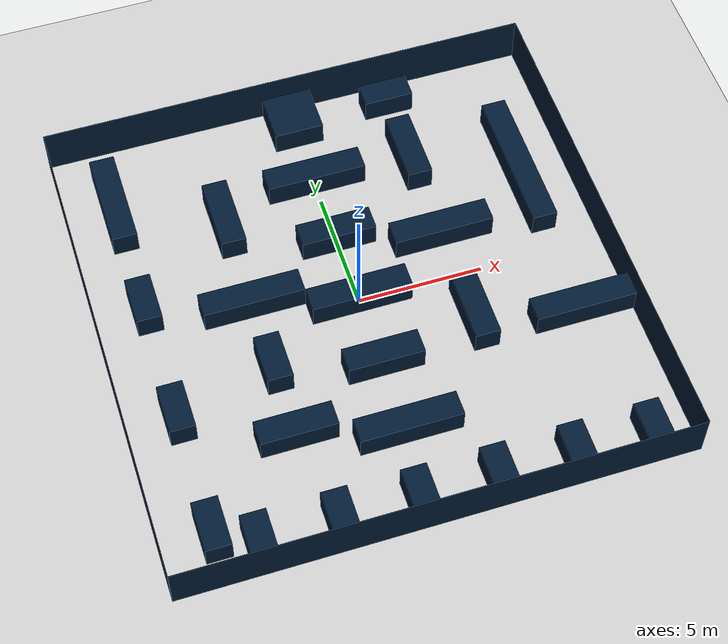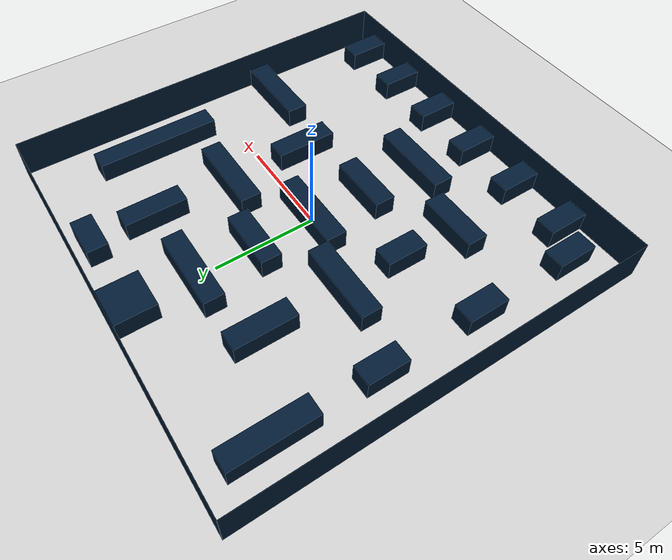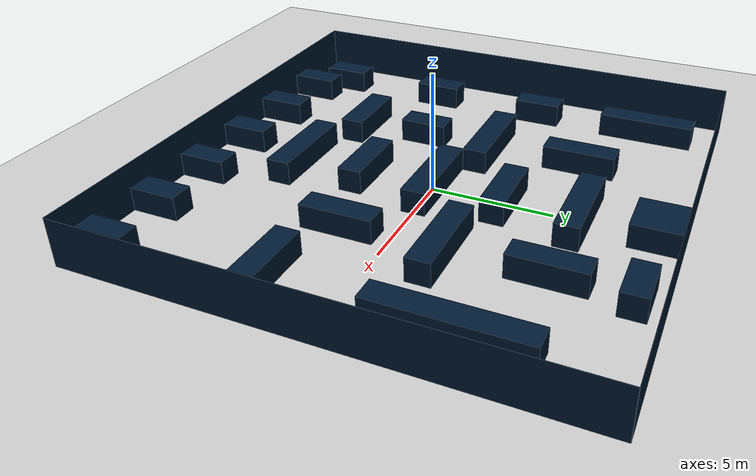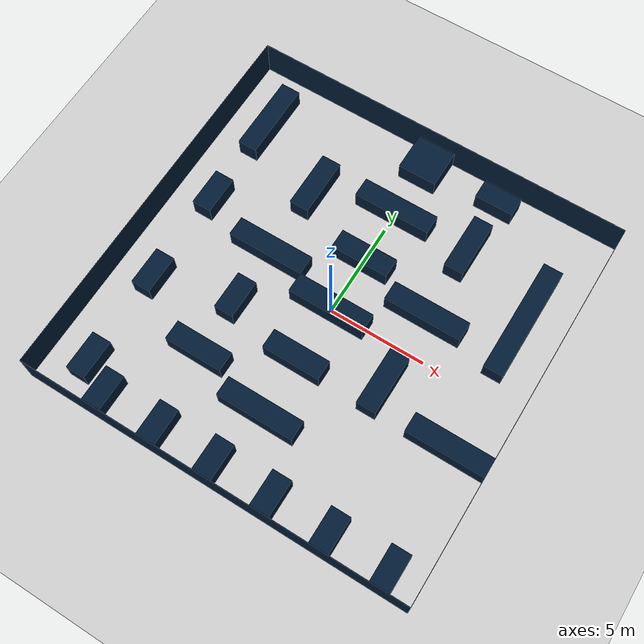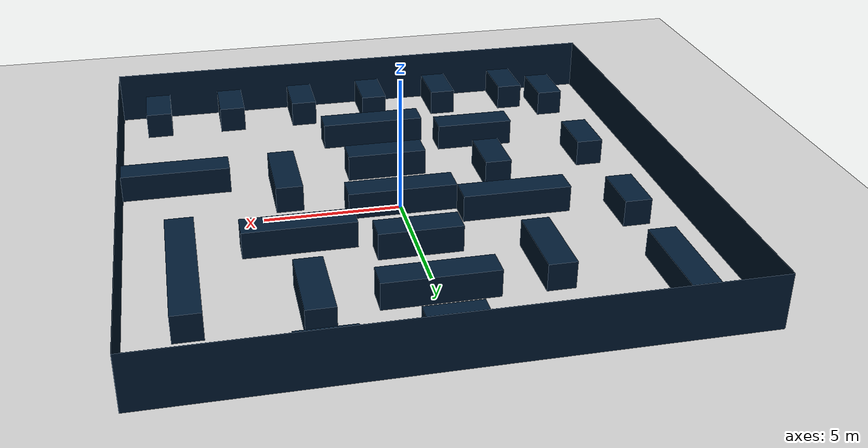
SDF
<?xml version="1.0" ?>
<sdf version="1.6">
  <world name="maze">

    <!-- Physics configuration -->
    <physics name="default_physics" type="ode">
      <max_step_size>0.003</max_step_size>
      <real_time_factor>1</real_time_factor>
      <real_time_update_rate>1000</real_time_update_rate>
    </physics>

    <!-- Global environment -->
    <gravity>0 0 -9.8</gravity>
    <scene>
      <ambient>0.4 0.4 0.4 1</ambient>
      <background>0.7 0.7 0.7 1</background>
      <shadows>1</shadows>
    </scene>

    <!-- Directional light -->
    <light name="sun" type="directional">
      <cast_shadows>true</cast_shadows>
      <pose>0 0 10 0 -0 0</pose>
      <diffuse>0.8 0.8 0.8 1</diffuse>
      <specular>0.2 0.2 0.2 1</specular>
      <attenuation>
        <range>1000</range>
        <constant>0.9</constant>
        <linear>0.01</linear>
        <quadratic>0.001</quadratic>
      </attenuation>
      <direction>-0.5 0.1 -0.9</direction>
    </light>

    <!-- Ground plane -->
    <model name="ground_plane">
      <static>true</static>
      <pose>0 0 0 0 0 0</pose>
      <link name="link">
        <collision name="collision">
          <geometry>
            <plane>
              <normal>0 0 1</normal>
              <size>100 100</size>
            </plane>
          </geometry>
          <surface>
            <friction><ode/></friction>
          </surface>
        </collision>
        <visual name="visual">
          <geometry>
            <plane>
              <normal>0 0 1</normal>
              <size>100 100</size>
            </plane>
          </geometry>
          <material>
            <ambient>0.8 0.8 0.8 1</ambient>
            <diffuse>0.8 0.8 0.8 1</diffuse>
            <specular>0.8 0.8 0.8 1</specular>
          </material>
        </visual>
      </link>
    </model>

    <!-- Outer border walls -->
    <model name="border">
      <static>true</static>
      <pose>0 0 1 0 0 0</pose>

      <!-- Left wall -->
      <link name="wall1">
        <pose>-10.005 0 0 0 0 0</pose>
        <collision name="collision"><geometry><box><size>0.01 20 2</size></box></geometry></collision>
        <visual name="visual"><geometry><box><size>0.01 20 2</size></box></geometry>
          <material><diffuse>0 0.1 0.2 1</diffuse></material></visual>
      </link>

      <!-- Right wall -->
      <link name="wall2">
        <pose>10.005 0 0 0 0 0</pose>
        <collision name="collision"><geometry><box><size>0.01 20 2</size></box></geometry></collision>
        <visual name="visual"><geometry><box><size>0.01 20 2</size></box></geometry>
          <material><diffuse>0 0.1 0.2 1</diffuse></material></visual>
      </link>

      <!-- Top wall -->
      <link name="wall3">
        <pose>0 10.005 0 0 0 0</pose>
        <collision name="collision"><geometry><box><size>20 0.01 2</size></box></geometry></collision>
        <visual name="visual"><geometry><box><size>20 0.01 2</size></box></geometry>
          <material><diffuse>0 0.1 0.2 1</diffuse></material></visual>
      </link>

      <!-- Bottom wall -->
      <link name="wall4">
        <pose>0 -10.005 0 0 0 0</pose>
        <collision name="collision"><geometry><box><size>20 0.01 2</size></box></geometry></collision>
        <visual name="visual"><geometry><box><size>20 0.01 2</size></box></geometry>
          <material><diffuse>0 0.1 0.2 1</diffuse></material></visual>
      </link>
    </model>

    <!-- Maze obstacles -->
    <model name="obstacles">
      <static>true</static>
      <pose>0 0 0.5 0 0 0</pose>

      <!-- Walls 1–26 -->
      <link name="wall1"><pose>-6.5 -9 0 0 0 0</pose><collision name="collision"><geometry><box><size>1 2 1</size></box></geometry></collision><visual name="visual"><geometry><box><size>1 2 1</size></box></geometry><material><diffuse>0 0.1 0.2 1</diffuse></material></visual></link>
      <link name="wall2"><pose>-3.5 -9 0 0 0 0</pose><collision name="collision"><geometry><box><size>1 2 1</size></box></geometry></collision><visual name="visual"><geometry><box><size>1 2 1</size></box></geometry><material><diffuse>0 0.1 0.2 1</diffuse></material></visual></link>
      <link name="wall3"><pose>-0.5 -9 0 0 0 0</pose><collision name="collision"><geometry><box><size>1 2 1</size></box></geometry></collision><visual name="visual"><geometry><box><size>1 2 1</size></box></geometry><material><diffuse>0 0.1 0.2 1</diffuse></material></visual></link>
      <link name="wall4"><pose>2.5 -9 0 0 0 0</pose><collision name="collision"><geometry><box><size>1 2 1</size></box></geometry></collision><visual name="visual"><geometry><box><size>1 2 1</size></box></geometry><material><diffuse>0 0.1 0.2 1</diffuse></material></visual></link>
      <link name="wall5"><pose>5.5 -9 0 0 0 0</pose><collision name="collision"><geometry><box><size>1 2 1</size></box></geometry></collision><visual name="visual"><geometry><box><size>1 2 1</size></box></geometry><material><diffuse>0 0.1 0.2 1</diffuse></material></visual></link>
      <link name="wall6"><pose>8.5 -9 0 0 0 0</pose><collision name="collision"><geometry><box><size>1 2 1</size></box></geometry></collision><visual name="visual"><geometry><box><size>1 2 1</size></box></geometry><material><diffuse>0 0.1 0.2 1</diffuse></material></visual></link>
      <link name="wall7"><pose>-8 7 0 0 0 0</pose><collision name="collision"><geometry><box><size>1 4 1</size></box></geometry></collision><visual name="visual"><geometry><box><size>1 4 1</size></box></geometry><material><diffuse>0 0.1 0.2 1</diffuse></material></visual></link>
      <link name="wall8"><pose>-8 2 0 0 0 0</pose><collision name="collision"><geometry><box><size>1 2 1</size></box></geometry></collision><visual name="visual"><geometry><box><size>1 2 1</size></box></geometry><material><diffuse>0 0.1 0.2 1</diffuse></material></visual></link>
      <link name="wall9"><pose>-8 -3 0 0 0 0</pose><collision name="collision"><geometry><box><size>1 2 1</size></box></geometry></collision><visual name="visual"><geometry><box><size>1 2 1</size></box></geometry><material><diffuse>0 0.1 0.2 1</diffuse></material></visual></link>
      <link name="wall10"><pose>-8 -8 0 0 0 0</pose><collision name="collision"><geometry><box><size>1 2 1</size></box></geometry></collision><visual name="visual"><geometry><box><size>1 2 1</size></box></geometry><material><diffuse>0 0.1 0.2 1</diffuse></material></visual></link>
      <link name="wall11"><pose>-4 -5 0 0 0 1.57</pose><collision name="collision"><geometry><box><size>1 3 1</size></box></geometry></collision><visual name="visual"><geometry><box><size>1 3 1</size></box></geometry><material><diffuse>0 0.1 0.2 1</diffuse></material></visual></link>
      <link name="wall12"><pose>-4 -2 0 0 0 0</pose><collision name="collision"><geometry><box><size>1 2 1</size></box></geometry></collision><visual name="visual"><geometry><box><size>1 2 1</size></box></geometry><material><diffuse>0 0.1 0.2 1</diffuse></material></visual></link>
      <link name="wall13"><pose>-4 1 0 0 0 1.57</pose><collision name="collision"><geometry><box><size>1 4 1</size></box></geometry></collision><visual name="visual"><geometry><box><size>1 4 1</size></box></geometry><material><diffuse>0 0.1 0.2 1</diffuse></material></visual></link>
      <link name="wall14"><pose>-4 5 0 0 0 0</pose><collision name="collision"><geometry><box><size>1 3 1</size></box></geometry></collision><visual name="visual"><geometry><box><size>1 3 1</size></box></geometry><material><diffuse>0 0.1 0.2 1</diffuse></material></visual></link>
      <link name="wall15"><pose>0 9 0 0 0 0</pose><collision name="collision"><geometry><box><size>2 2 1</size></box></geometry></collision><visual name="visual"><geometry><box><size>2 2 1</size></box></geometry><material><diffuse>0 0.1 0.2 1</diffuse></material></visual></link>
      <link name="wall16"><pose>0 6 0 0 0 0</pose><collision name="collision"><geometry><box><size>4 1 1</size></box></geometry></collision><visual name="visual"><geometry><box><size>4 1 1</size></box></geometry><material><diffuse>0 0.1 0.2 1</diffuse></material></visual></link>
      <link name="wall17"><pose>0 3 0 0 0 1.57</pose><collision name="collision"><geometry><box><size>1 3 1</size></box></geometry></collision><visual name="visual"><geometry><box><size>1 3 1</size></box></geometry><material><diffuse>0 0.1 0.2 1</diffuse></material></visual></link>
      <link name="wall18"><pose>0 0 0 0 0 0</pose><collision name="collision"><geometry><box><size>4 1 1</size></box></geometry></collision><visual name="visual"><geometry><box><size>4 1 1</size></box></geometry><material><diffuse>0 0.1 0.2 1</diffuse></material></visual></link>
      <link name="wall19"><pose>0 -3 0 0 0 1.57</pose><collision name="collision"><geometry><box><size>1 3 1</size></box></geometry></collision><visual name="visual"><geometry><box><size>1 3 1</size></box></geometry><material><diffuse>0 0.1 0.2 1</diffuse></material></visual></link>
      <link name="wall20"><pose>0 -6 0 0 0 0</pose><collision name="collision"><geometry><box><size>4 1 1</size></box></geometry></collision><visual name="visual"><geometry><box><size>4 1 1</size></box></geometry><material><diffuse>0 0.1 0.2 1</diffuse></material></visual></link>
      <link name="wall21"><pose>4 9 0 0 0 1.57</pose><collision name="collision"><geometry><box><size>1 2 1</size></box></geometry></collision><visual name="visual"><geometry><box><size>1 2 1</size></box></geometry><material><diffuse>0 0.1 0.2 1</diffuse></material></visual></link>
      <link name="wall22"><pose>4 6 0 0 0 0</pose><collision name="collision"><geometry><box><size>1 3 1</size></box></geometry></collision><visual name="visual"><geometry><box><size>1 3 1</size></box></geometry><material><diffuse>0 0.1 0.2 1</diffuse></material></visual></link>
      <link name="wall23"><pose>4 2 0 0 0 1.57</pose><collision name="collision"><geometry><box><size>1 4 1</size></box></geometry></collision><visual name="visual"><geometry><box><size>1 4 1</size></box></geometry><material><diffuse>0 0.1 0.2 1</diffuse></material></visual></link>
      <link name="wall24"><pose>4 -2 0 0 0 0</pose><collision name="collision"><geometry><box><size>1 3 1</size></box></geometry></collision><visual name="visual"><geometry><box><size>1 3 1</size></box></geometry><material><diffuse>0 0.1 0.2 1</diffuse></material></visual></link>
      <link name="wall25"><pose>8 4 0 0 0 0</pose><collision name="collision"><geometry><box><size>1 6 1</size></box></geometry></collision><visual name="visual"><geometry><box><size>1 6 1</size></box></geometry><material><diffuse>0 0.1 0.2 1</diffuse></material></visual></link>
      <link name="wall26"><pose>8 -3 0 0 0 1.57</pose><collision name="collision"><geometry><box><size>1 4 1</size></box></geometry></collision><visual name="visual"><geometry><box><size>1 4 1</size></box></geometry><material><diffuse>0 0.1 0.2 1</diffuse></material></visual></link>
    </model>

  </world>
</sdf>
